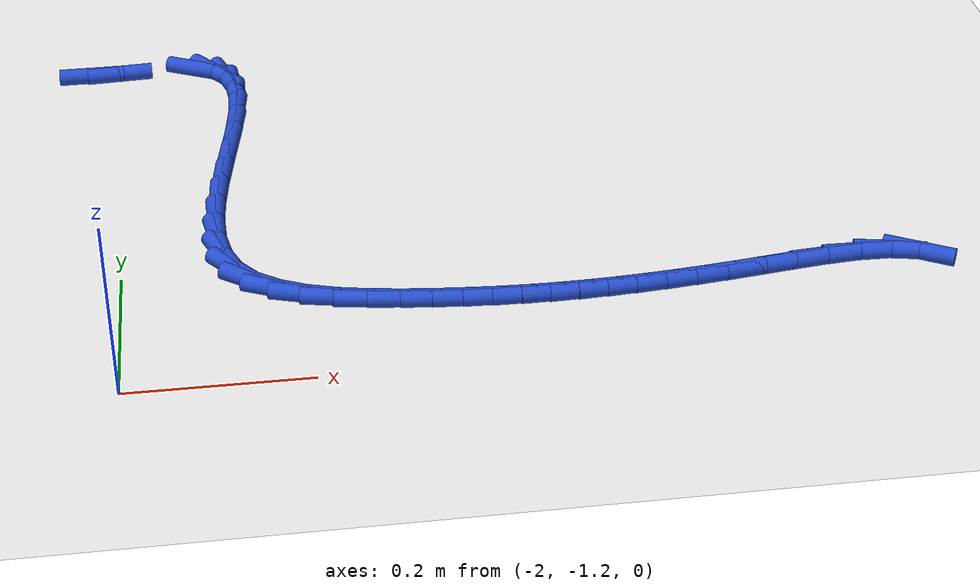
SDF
<sdf version="1.6">
 <world name="default">
  <model name="ground_plane">
   <static>1</static>
   <link name="link">
    <collision name="collision">
     <geometry><plane><normal>0 0 1</normal><size>100 100</size></plane></geometry>
     <surface><friction><ode><mu>100</mu><mu2>50</mu2></ode></friction></surface>
    </collision>
    <visual name="visual">
     <cast_shadows>0</cast_shadows>
     <geometry><plane><normal>0 0 1</normal><size>100 100</size></plane></geometry>
     <material>
      <script><uri>file://media/materials/scripts/gazebo.material</uri><name>Gazebo/WhiteGlow</name></script>
     </material>
    </visual>
   </link>
  </model>
  <model name="line">
   <link name="link_138">
    <pose>-2.040349439484327 -0.5569286026736423 0.01 0 1.57 0.007825129127883816</pose>
    <collision name="collision">
     <geometry><cylinder><radius>0.01</radius><length>0.08</length></cylinder></geometry>
    </collision>
    <visual name="visual">
     <material>
      <script><name>Gazebo/Blue</name><uri>file://media/materials/scripts/gazebo.material</uri></script>
     </material>
     <geometry><cylinder><radius>0.01</radius><length>0.08</length></cylinder></geometry>
    </visual>
   </link>
   <link name="link_139">
    <pose>-2.0056473573804827 -0.5566570488574978 0.01 0 1.57 0.06111328106365061</pose>
    <collision name="collision">
     <geometry><cylinder><radius>0.01</radius><length>0.08</length></cylinder></geometry>
    </collision>
    <visual name="visual">
     <material>
      <script><name>Gazebo/Blue</name><uri>file://media/materials/scripts/gazebo.material</uri></script>
     </material>
     <geometry><cylinder><radius>0.01</radius><length>0.08</length></cylinder></geometry>
    </visual>
   </link>
   <link name="link_142">
    <pose>-1.9078879629609675 -0.5568301978706948 0.01 0 1.57 -0.450934979203573</pose>
    <collision name="collision">
     <geometry><cylinder><radius>0.01</radius><length>0.08</length></cylinder></geometry>
    </collision>
    <visual name="visual">
     <material>
      <script><name>Gazebo/Blue</name><uri>file://media/materials/scripts/gazebo.material</uri></script>
     </material>
     <geometry><cylinder><radius>0.01</radius><length>0.08</length></cylinder></geometry>
    </visual>
   </link>
   <link name="link_143">
    <pose>-1.8864237275383262 -0.5672233681805212 0.01 0 1.57 -0.8968785784496073</pose>
    <collision name="collision">
     <geometry><cylinder><radius>0.01</radius><length>0.08</length></cylinder></geometry>
    </collision>
    <visual name="visual">
     <material>
      <script><name>Gazebo/Blue</name><uri>file://media/materials/scripts/gazebo.material</uri></script>
     </material>
     <geometry><cylinder><radius>0.01</radius><length>0.08</length></cylinder></geometry>
    </visual>
   </link>
   <link name="link_144">
    <pose>-1.8722902040096503 -0.5849201170473199 0.01 0 1.57 -1.25337746082949</pose>
    <collision name="collision">
     <geometry><cylinder><radius>0.01</radius><length>0.08</length></cylinder></geometry>
    </collision>
    <visual name="visual">
     <material>
      <script><name>Gazebo/Blue</name><uri>file://media/materials/scripts/gazebo.material</uri></script>
     </material>
     <geometry><cylinder><radius>0.01</radius><length>0.08</length></cylinder></geometry>
    </visual>
   </link>
   <link name="link_145">
    <pose>-1.8643973571536758 -0.6089450547695835 0.01 0 1.57 -1.4774663769775733</pose>
    <collision name="collision">
     <geometry><cylinder><radius>0.01</radius><length>0.08</length></cylinder></geometry>
    </collision>
    <visual name="visual">
     <material>
      <script><name>Gazebo/Blue</name><uri>file://media/materials/scripts/gazebo.material</uri></script>
     </material>
     <geometry><cylinder><radius>0.01</radius><length>0.08</length></cylinder></geometry>
    </visual>
   </link>
   <link name="link_146">
    <pose>-1.861648225703882 -0.6383155272890282 0.01 0 1.57 1.5323482303165663</pose>
    <collision name="collision">
     <geometry><cylinder><radius>0.01</radius><length>0.08</length></cylinder></geometry>
    </collision>
    <visual name="visual">
     <material>
      <script><name>Gazebo/Blue</name><uri>file://media/materials/scripts/gazebo.material</uri></script>
     </material>
     <geometry><cylinder><radius>0.01</radius><length>0.08</length></cylinder></geometry>
    </visual>
   </link>
   <link name="link_147">
    <pose>-1.8629458483937478 -0.672048880547371 0.01 0 1.57 1.4568483694899523</pose>
    <collision name="collision">
     <geometry><cylinder><radius>0.01</radius><length>0.08</length></cylinder></geometry>
    </collision>
    <visual name="visual">
     <material>
      <script><name>Gazebo/Blue</name><uri>file://media/materials/scripts/gazebo.material</uri></script>
     </material>
     <geometry><cylinder><radius>0.01</radius><length>0.08</length></cylinder></geometry>
    </visual>
   </link>
   <link name="link_148">
    <pose>-1.8671932639567534 -0.7091624604863269 0.01 0 1.57 1.417612795734092</pose>
    <collision name="collision">
     <geometry><cylinder><radius>0.01</radius><length>0.08</length></cylinder></geometry>
    </collision>
    <visual name="visual">
     <material>
      <script><name>Gazebo/Blue</name><uri>file://media/materials/scripts/gazebo.material</uri></script>
     </material>
     <geometry><cylinder><radius>0.01</radius><length>0.08</length></cylinder></geometry>
    </visual>
   </link>
   <link name="link_149">
    <pose>-1.873293511126377 -0.7486736130476126 0.01 0 1.57 1.404813166748967</pose>
    <collision name="collision">
     <geometry><cylinder><radius>0.01</radius><length>0.08</length></cylinder></geometry>
    </collision>
    <visual name="visual">
     <material>
      <script><name>Gazebo/Blue</name><uri>file://media/materials/scripts/gazebo.material</uri></script>
     </material>
     <geometry><cylinder><radius>0.01</radius><length>0.08</length></cylinder></geometry>
    </visual>
   </link>
   <link name="link_150">
    <pose>-1.8801496286360995 -0.789599684172945 0.01 0 1.57 1.4145539215400889</pose>
    <collision name="collision">
     <geometry><cylinder><radius>0.01</radius><length>0.08</length></cylinder></geometry>
    </collision>
    <visual name="visual">
     <material>
      <script><name>Gazebo/Blue</name><uri>file://media/materials/scripts/gazebo.material</uri></script>
     </material>
     <geometry><cylinder><radius>0.01</radius><length>0.08</length></cylinder></geometry>
    </visual>
   </link>
   <link name="link_151">
    <pose>-1.8866646552194 -0.8309580198040405 0.01 0 1.57 1.4470209021928988</pose>
    <collision name="collision">
     <geometry><cylinder><radius>0.01</radius><length>0.08</length></cylinder></geometry>
    </collision>
    <visual name="visual">
     <material>
      <script><name>Gazebo/Blue</name><uri>file://media/materials/scripts/gazebo.material</uri></script>
     </material>
     <geometry><cylinder><radius>0.01</radius><length>0.08</length></cylinder></geometry>
    </visual>
   </link>
   <link name="link_152">
    <pose>-1.891741629609757 -0.8717659658826149 0.01 0 1.57 1.5061642013331855</pose>
    <collision name="collision">
     <geometry><cylinder><radius>0.01</radius><length>0.08</length></cylinder></geometry>
    </collision>
    <visual name="visual">
     <material>
      <script><name>Gazebo/Blue</name><uri>file://media/materials/scripts/gazebo.material</uri></script>
     </material>
     <geometry><cylinder><radius>0.01</radius><length>0.08</length></cylinder></geometry>
    </visual>
   </link>
   <link name="link_153">
    <pose>-1.8942835905406512 -0.9110408683503851 0.01 0 1.57 -1.5411522011845382</pose>
    <collision name="collision">
     <geometry><cylinder><radius>0.01</radius><length>0.08</length></cylinder></geometry>
    </collision>
    <visual name="visual">
     <material>
      <script><name>Gazebo/Blue</name><uri>file://media/materials/scripts/gazebo.material</uri></script>
     </material>
     <geometry><cylinder><radius>0.01</radius><length>0.08</length></cylinder></geometry>
    </visual>
   </link>
   <link name="link_154">
    <pose>-1.8931935767455608 -0.947800073149067 0.01 0 1.57 -1.3976002385534296</pose>
    <collision name="collision">
     <geometry><cylinder><radius>0.01</radius><length>0.08</length></cylinder></geometry>
    </collision>
    <visual name="visual">
     <material>
      <script><name>Gazebo/Blue</name><uri>file://media/materials/scripts/gazebo.material</uri></script>
     </material>
     <geometry><cylinder><radius>0.01</radius><length>0.08</length></cylinder></geometry>
    </visual>
   </link>
   <link name="link_155">
    <pose>-1.8873746269579668 -0.9810609262203789 0.01 0 1.57 -1.1863151819746904</pose>
    <collision name="collision">
     <geometry><cylinder><radius>0.01</radius><length>0.08</length></cylinder></geometry>
    </collision>
    <visual name="visual">
     <material>
      <script><name>Gazebo/Blue</name><uri>file://media/materials/scripts/gazebo.material</uri></script>
     </material>
     <geometry><cylinder><radius>0.01</radius><length>0.08</length></cylinder></geometry>
    </visual>
   </link>
   <link name="link_156">
    <pose>-1.8757297799113464 -1.0098407735060335 0.01 0 1.57 -0.9038340781495131</pose>
    <collision name="collision">
     <geometry><cylinder><radius>0.01</radius><length>0.08</length></cylinder></geometry>
    </collision>
    <visual name="visual">
     <material>
      <script><name>Gazebo/Blue</name><uri>file://media/materials/scripts/gazebo.material</uri></script>
     </material>
     <geometry><cylinder><radius>0.01</radius><length>0.08</length></cylinder></geometry>
    </visual>
   </link>
   <link name="link_157">
    <pose>-1.8572976403954287 -1.0332519689945068 0.01 0 1.57 -0.6344789947450417</pose>
    <collision name="collision">
     <geometry><cylinder><radius>0.01</radius><length>0.08</length></cylinder></geometry>
    </collision>
    <visual name="visual">
     <material>
      <script><name>Gazebo/Blue</name><uri>file://media/materials/scripts/gazebo.material</uri></script>
     </material>
     <geometry><cylinder><radius>0.01</radius><length>0.08</length></cylinder></geometry>
    </visual>
   </link>
   <link name="link_158">
    <pose>-1.8325881999183598 -1.0514380508955306 0.01 0 1.57 -0.43481968839257396</pose>
    <collision name="collision">
     <geometry><cylinder><radius>0.01</radius><length>0.08</length></cylinder></geometry>
    </collision>
    <visual name="visual">
     <material>
      <script><name>Gazebo/Blue</name><uri>file://media/materials/scripts/gazebo.material</uri></script>
     </material>
     <geometry><cylinder><radius>0.01</radius><length>0.08</length></cylinder></geometry>
    </visual>
   </link>
   <link name="link_159">
    <pose>-1.8030133275958946 -1.0651746155629218 0.01 0 1.57 -0.29609539753867137</pose>
    <collision name="collision">
     <geometry><cylinder><radius>0.01</radius><length>0.08</length></cylinder></geometry>
    </collision>
    <visual name="visual">
     <material>
      <script><name>Gazebo/Blue</name><uri>file://media/materials/scripts/gazebo.material</uri></script>
     </material>
     <geometry><cylinder><radius>0.01</radius><length>0.08</length></cylinder></geometry>
    </visual>
   </link>
   <link name="link_160">
    <pose>-1.7699979307371492 -1.0752463968390293 0.01 0 1.57 -0.20248277024559655</pose>
    <collision name="collision">
     <geometry><cylinder><radius>0.01</radius><length>0.08</length></cylinder></geometry>
    </collision>
    <visual name="visual">
     <material>
      <script><name>Gazebo/Blue</name><uri>file://media/materials/scripts/gazebo.material</uri></script>
     </material>
     <geometry><cylinder><radius>0.01</radius><length>0.08</length></cylinder></geometry>
    </visual>
   </link>
   <link name="link_161">
    <pose>-1.73496691665124 -1.0824381285662035 0.01 0 1.57 -0.1421060876412214</pose>
    <collision name="collision">
     <geometry><cylinder><radius>0.01</radius><length>0.08</length></cylinder></geometry>
    </collision>
    <visual name="visual">
     <material>
      <script><name>Gazebo/Blue</name><uri>file://media/materials/scripts/gazebo.material</uri></script>
     </material>
     <geometry><cylinder><radius>0.01</radius><length>0.08</length></cylinder></geometry>
    </visual>
   </link>
   <link name="link_162">
    <pose>-1.6993451926472818 -1.0875345445867932 0.01 0 1.57 -0.10782953390163613</pose>
    <collision name="collision">
     <geometry><cylinder><radius>0.01</radius><length>0.08</length></cylinder></geometry>
    </collision>
    <visual name="visual">
     <material>
      <script><name>Gazebo/Blue</name><uri>file://media/materials/scripts/gazebo.material</uri></script>
     </material>
     <geometry><cylinder><radius>0.01</radius><length>0.08</length></cylinder></geometry>
    </visual>
   </link>
   <link name="link_163">
    <pose>-1.6645209315839984 -1.0913042501475005 0.01 0 1.57 -0.08491929219017505</pose>
    <collision name="collision">
     <geometry><cylinder><radius>0.01</radius><length>0.08</length></cylinder></geometry>
    </collision>
    <visual name="visual">
     <material>
      <script><name>Gazebo/Blue</name><uri>file://media/materials/scripts/gazebo.material</uri></script>
     </material>
     <geometry><cylinder><radius>0.01</radius><length>0.08</length></cylinder></geometry>
    </visual>
   </link>
   <link name="link_164">
    <pose>-1.631055744559955 -1.094152941011871 0.01 0 1.57 -0.060950885086689006</pose>
    <collision name="collision">
     <geometry><cylinder><radius>0.01</radius><length>0.08</length></cylinder></geometry>
    </collision>
    <visual name="visual">
     <material>
      <script><name>Gazebo/Blue</name><uri>file://media/materials/scripts/gazebo.material</uri></script>
     </material>
     <geometry><cylinder><radius>0.01</radius><length>0.08</length></cylinder></geometry>
    </visual>
   </link>
   <link name="link_165">
    <pose>-1.5986947381166503 -1.0961278191670778 0.01 0 1.57 -0.035900568585557076</pose>
    <collision name="collision">
     <geometry><cylinder><radius>0.01</radius><length>0.08</length></cylinder></geometry>
    </collision>
    <visual name="visual">
     <material>
      <script><name>Gazebo/Blue</name><uri>file://media/materials/scripts/gazebo.material</uri></script>
     </material>
     <geometry><cylinder><radius>0.01</radius><length>0.08</length></cylinder></geometry>
    </visual>
   </link>
   <link name="link_166">
    <pose>-1.5671482958803105 -1.0972608411874987 0.01 0 1.57 -0.010415706312305822</pose>
    <collision name="collision">
     <geometry><cylinder><radius>0.01</radius><length>0.08</length></cylinder></geometry>
    </collision>
    <visual name="visual">
     <material>
      <script><name>Gazebo/Blue</name><uri>file://media/materials/scripts/gazebo.material</uri></script>
     </material>
     <geometry><cylinder><radius>0.01</radius><length>0.08</length></cylinder></geometry>
    </visual>
   </link>
   <link name="link_167">
    <pose>-1.536126801477161 -1.0975839636475107 0.01 0 1.57 0.014772462611435323</pose>
    <collision name="collision">
     <geometry><cylinder><radius>0.01</radius><length>0.08</length></cylinder></geometry>
    </collision>
    <visual name="visual">
     <material>
      <script><name>Gazebo/Blue</name><uri>file://media/materials/scripts/gazebo.material</uri></script>
     </material>
     <geometry><cylinder><radius>0.01</radius><length>0.08</length></cylinder></geometry>
    </visual>
   </link>
   <link name="link_168">
    <pose>-1.5053406385334271 -1.0971291431214916 0.01 0 1.57 0.03891644760339682</pose>
    <collision name="collision">
     <geometry><cylinder><radius>0.01</radius><length>0.08</length></cylinder></geometry>
    </collision>
    <visual name="visual">
     <material>
      <script><name>Gazebo/Blue</name><uri>file://media/materials/scripts/gazebo.material</uri></script>
     </material>
     <geometry><cylinder><radius>0.01</radius><length>0.08</length></cylinder></geometry>
    </visual>
   </link>
   <link name="link_169">
    <pose>-1.4745001906753348 -1.0959283361838181 0.01 0 1.57 0.06132677689409001</pose>
    <collision name="collision">
     <geometry><cylinder><radius>0.01</radius><length>0.08</length></cylinder></geometry>
    </collision>
    <visual name="visual">
     <material>
      <script><name>Gazebo/Blue</name><uri>file://media/materials/scripts/gazebo.material</uri></script>
     </material>
     <geometry><cylinder><radius>0.01</radius><length>0.08</length></cylinder></geometry>
    </visual>
   </link>
   <link name="link_170">
    <pose>-1.4433158415291087 -1.0940134994088673 0.01 0 1.57 0.08143746901725928</pose>
    <collision name="collision">
     <geometry><cylinder><radius>0.01</radius><length>0.08</length></cylinder></geometry>
    </collision>
    <visual name="visual">
     <material>
      <script><name>Gazebo/Blue</name><uri>file://media/materials/scripts/gazebo.material</uri></script>
     </material>
     <geometry><cylinder><radius>0.01</radius><length>0.08</length></cylinder></geometry>
    </visual>
   </link>
   <link name="link_171">
    <pose>-1.4114979747209755 -1.0914165893710166 0.01 0 1.57 0.09884987807902727</pose>
    <collision name="collision">
     <geometry><cylinder><radius>0.01</radius><length>0.08</length></cylinder></geometry>
    </collision>
    <visual name="visual">
     <material>
      <script><name>Gazebo/Blue</name><uri>file://media/materials/scripts/gazebo.material</uri></script>
     </material>
     <geometry><cylinder><radius>0.01</radius><length>0.08</length></cylinder></geometry>
    </visual>
   </link>
   <link name="link_172">
    <pose>-1.3787569738771601 -1.0881695626446435 0.01 0 1.57 0.11334887129884777</pose>
    <collision name="collision">
     <geometry><cylinder><radius>0.01</radius><length>0.08</length></cylinder></geometry>
    </collision>
    <visual name="visual">
     <material>
      <script><name>Gazebo/Blue</name><uri>file://media/materials/scripts/gazebo.material</uri></script>
     </material>
     <geometry><cylinder><radius>0.01</radius><length>0.08</length></cylinder></geometry>
    </visual>
   </link>
   <link name="link_173">
    <pose>-1.3448032226238882 -1.0843043758041249 0.01 0 1.57 0.12489301888127127</pose>
    <collision name="collision">
     <geometry><cylinder><radius>0.01</radius><length>0.08</length></cylinder></geometry>
    </collision>
    <visual name="visual">
     <material>
      <script><name>Gazebo/Blue</name><uri>file://media/materials/scripts/gazebo.material</uri></script>
     </material>
     <geometry><cylinder><radius>0.01</radius><length>0.08</length></cylinder></geometry>
    </visual>
   </link>
   <link name="link_174">
    <pose>-1.3093471045873848 -1.0798529854238381 0.01 0 1.57 0.1334297294137221</pose>
    <collision name="collision">
     <geometry><cylinder><radius>0.01</radius><length>0.08</length></cylinder></geometry>
    </collision>
    <visual name="visual">
     <material>
      <script><name>Gazebo/Blue</name><uri>file://media/materials/scripts/gazebo.material</uri></script>
     </material>
     <geometry><cylinder><radius>0.01</radius><length>0.08</length></cylinder></geometry>
    </visual>
   </link>
   <link name="link_175">
    <pose>-1.2721078332437668 -1.0748544605233754 0.01 0 1.57 0.1261929541868777</pose>
    <collision name="collision">
     <geometry><cylinder><radius>0.01</radius><length>0.08</length></cylinder></geometry>
    </collision>
    <visual name="visual">
     <material>
      <script><name>Gazebo/Blue</name><uri>file://media/materials/scripts/gazebo.material</uri></script>
     </material>
     <geometry><cylinder><radius>0.01</radius><length>0.08</length></cylinder></geometry>
    </visual>
   </link>
   <link name="link_176">
    <pose>-1.2335713186745842 -1.0699654443359545 0.01 0 1.57 0.07972773927378313</pose>
    <collision name="collision">
     <geometry><cylinder><radius>0.01</radius><length>0.08</length></cylinder></geometry>
    </collision>
    <visual name="visual">
     <material>
      <script><name>Gazebo/Blue</name><uri>file://media/materials/scripts/gazebo.material</uri></script>
     </material>
     <geometry><cylinder><radius>0.01</radius><length>0.08</length></cylinder></geometry>
    </visual>
   </link>
   <link name="link_177">
    <pose>-1.195572811136675 -1.0669294737783719 0.01 0 1.57 -0.01890823611494737</pose>
    <collision name="collision">
     <geometry><cylinder><radius>0.01</radius><length>0.08</length></cylinder></geometry>
    </collision>
    <visual name="visual">
     <material>
      <script><name>Gazebo/Blue</name><uri>file://media/materials/scripts/gazebo.material</uri></script>
     </material>
     <geometry><cylinder><radius>0.01</radius><length>0.08</length></cylinder></geometry>
    </visual>
   </link>
   <link name="link_178">
    <pose>-1.1600847242617063 -1.0676005708833685 0.01 0 1.57 -0.19836097513907128</pose>
    <collision name="collision">
     <geometry><cylinder><radius>0.01</radius><length>0.08</length></cylinder></geometry>
    </collision>
    <visual name="visual">
     <material>
      <script><name>Gazebo/Blue</name><uri>file://media/materials/scripts/gazebo.material</uri></script>
     </material>
     <geometry><cylinder><radius>0.01</radius><length>0.08</length></cylinder></geometry>
    </visual>
   </link>
   <link name="link_179">
    <pose>-1.1290794716813413 -1.0738327576836855 0.01 0 1.57 -0.507360146876216</pose>
    <collision name="collision">
     <geometry><cylinder><radius>0.01</radius><length>0.08</length></cylinder></geometry>
    </collision>
    <visual name="visual">
     <material>
      <script><name>Gazebo/Blue</name><uri>file://media/materials/scripts/gazebo.material</uri></script>
     </material>
     <geometry><cylinder><radius>0.01</radius><length>0.08</length></cylinder></geometry>
    </visual>
   </link>
  </model>
 </world>
</sdf>
